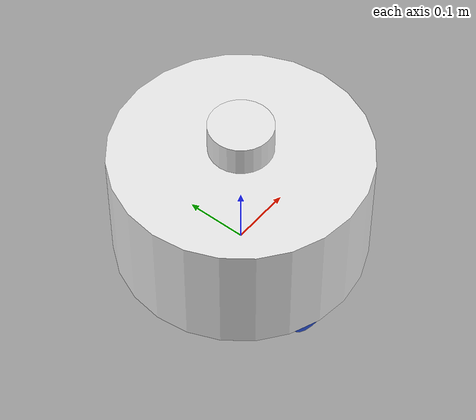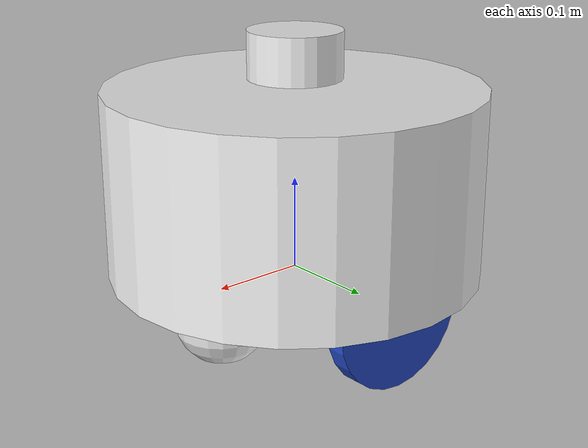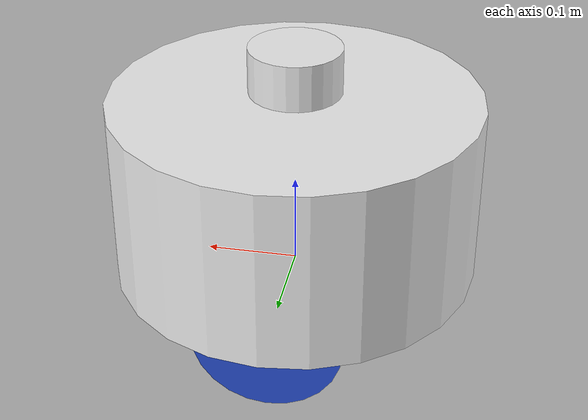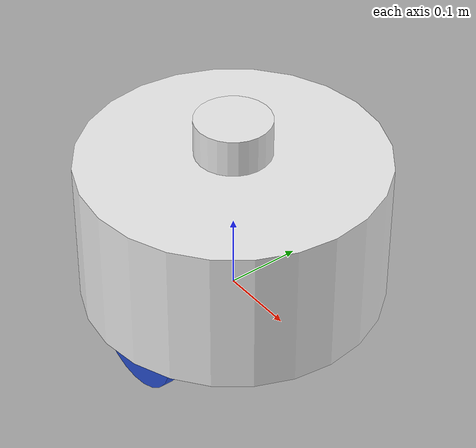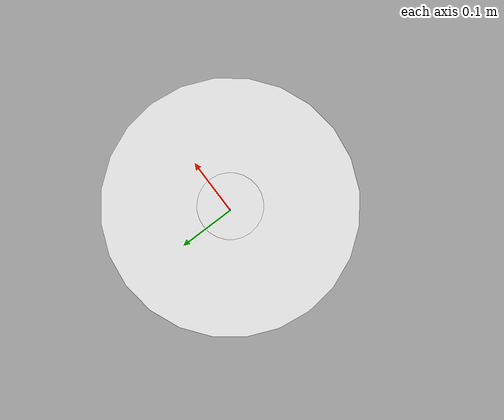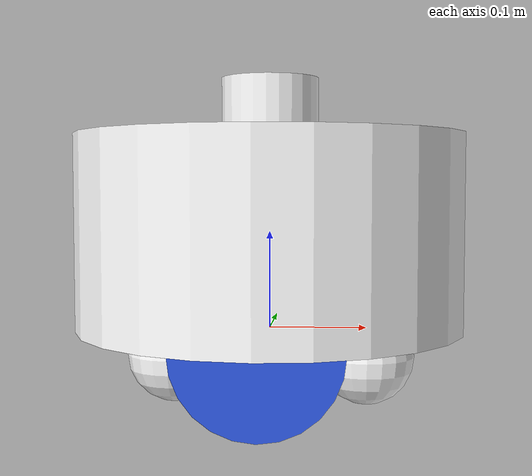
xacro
<?xml version="1.0" ?>
<robot name="iserve_openshelf7" xmlns:xacro="https://www.ros.org/wiki/xacro" >

  <!-- include the xacro files-->
  <xacro:include filename="$(find ubtna_mobile_description)/urdf/materials.xacro" />
  <xacro:include filename="$(find ubtna_mobile_description)/urdf/iserve_openshelf7.gazebo" />
  <xacro:include filename="$(find ubtna_mobile_description)/urdf/macros_wheel_openshelf7.xacro" />
  <!-- Robot constants and properties -->
  <xacro:include filename="$(find ubtna_mobile_description)/urdf/iserve_openshelf7_properties.xacro" />
  <!-- Chasis defined here -->
  <link name="base_link">
    <pose>0 0 0 0 0 0</pose>
    <inertial>
      <mass value="1"/>
      <origin rpy="0 0 0" xyz="0 0 0"/>
      <inertia ixx="0.0395416666667" ixy="0" ixz="0" iyy="0.106208333333" iyz="0" izz="0.00106208333333"/>
    </inertial>

    <collision name="collision_chassis">
      <origin xyz="0 0 0.1" rpy="0 0 0"/>
      <geometry>
        <cylinder radius="0.15" length="${chassisHeight}"/>
      </geometry>
    </collision>

    <visual>
      <origin xyz="0 0 0.1" rpy="0 0 0"/>
      <geometry>
        <cylinder radius="${chassisRadius}" length="${chassisHeight}"/>
      </geometry>
    </visual>
<!-- caster front -->
    <collision name="caster_front_collision">
      <origin rpy=" 0 0 0" xyz="${casterOffsetX} 0 ${casterOffsetZ}"/>
      <geometry>
        <sphere radius="${casterRadius}"/>
      </geometry>
      <surface>
        <friction>
          <ode>
            <mu>0</mu>
            <mu2>0</mu2>
          </ode>
        </friction>
      </surface>
    </collision>
    <visual name="caster_front_visual">
      <origin rpy=" 0 0 0" xyz="${casterOffsetX} 0 ${casterOffsetZ}"/>
      <geometry>
        <sphere radius="${casterRadius}"/>
      </geometry>
    </visual>
  <!-- caster back -->
    <collision name="caster_back_collision">
      <origin rpy=" 0 0 0" xyz="-${casterOffsetX} 0 ${casterOffsetZ}"/>
      <geometry>
        <sphere radius="${casterRadius}"/>
      </geometry>
      <surface>
        <friction>
          <ode>
            <mu>0</mu>
            <mu2>0</mu2>
          </ode>
        </friction>
      </surface>
    </collision>
    <visual name="caster_back_visual">
      <origin rpy=" 0 0 0" xyz="-${casterOffsetX} 0 ${casterOffsetZ}"/>
      <geometry>
        <sphere radius="${casterRadius}"/>
      </geometry>
    </visual>
  </link>

  <!-- Right Wheel link -->

   <xacro:link_wheel name="link_right_wheel" />
   <xacro:joint_wheel name="joint_right_wheel"  child="link_right_wheel"  origin_xyz="0 ${wheelOffsetY} 0"  />

  <!-- Left Wheel link -->

  <xacro:link_wheel name="link_left_wheel" />
  <xacro:joint_wheel name="joint_left_wheel"   child="link_left_wheel"   origin_xyz="0 -${wheelOffsetY} 0"  />

  <joint name="joint_sensor_laser" type="fixed">
    <origin xyz="${hokuyoOffsetX} ${hokuyoOffsetY} ${hokuyoOffsetZ}" rpy="3.1415926 0 0"/>
    <parent link="base_link"/>
    <child link="hokuyo_link"/>
  </joint>
 <link name="hokuyo_link">
    <inertial>
      <origin xyz="0 0 0" rpy="0 0 0" />
      <mass value="0.1" />
      <!-- RANDOM INERTIA BELOW -->
      <inertia ixx="0.0395416666667" ixy="0" ixz="0" iyy="0.106208333333" iyz="0" izz="0.001"/>
    </inertial>

    <visual>
      <origin xyz="0 0 0" rpy="0 0 0" />
      <geometry>
        <cylinder radius="0.05" length="0.05"/>
      </geometry>
      <material name="white" />
    </visual>

    <collision>
      <origin xyz="0 0 0" rpy="0 0 0"/>
      <geometry>
        <cylinder radius="0.05" length="0.05"/>
      </geometry>
    </collision>
  </link>
  <joint name="joint_basefootprint" type="fixed">
    <origin xyz="0 0 0" rpy="0 0 0"/>
    <parent link="base_footprint"/>
    <child link="base_link"/>
  </joint>
  <link name="base_footprint">
    <inertial>
      <origin xyz="0 0 0" rpy="0 0 0" />
      <mass value="0.01" />
      <inertia ixx="0.0001" ixy="0" ixz="0" iyy="0.001" iyz="0" izz="0.001"/>
    </inertial>

    <visual>
      <origin xyz="0 0 0" rpy="0 0 0" />
      <geometry>
        <cylinder radius="0.01" length="0.01"/>
      </geometry>
      <material name="white" />
    </visual>

    <collision>
      <origin xyz="0 0 0" rpy="0 0 0"/>
      <geometry>
        <cylinder radius="0.01" length="0.01"/>
      </geometry>
    </collision>
  </link>
</robot>

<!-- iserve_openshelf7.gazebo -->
<robot name="iserve_openshelf7" xmlns:xacro="https://www.ros.org/wiki/xacro" >
  <!-- Robot constants and properties -->
  <xacro:include filename="$(find ubtna_mobile_description)/urdf/iserve_openshelf7_properties.xacro" />
  <gazebo reference="base_link">
    <material>Gazebo/WhiteGlow</material>
  </gazebo>
  <gazebo reference="link_left_wheel">
    <material>Gazebo/Blue</material>
  </gazebo>
  <gazebo reference="link_right_wheel">
    <material>Gazebo/Blue</material>
  </gazebo>

  <gazebo>
    <plugin filename="libgazebo_ros_diff_drive.so" name="differential_drive_controller">
      <alwaysOn>true</alwaysOn>
      <updateRate>20</updateRate>
      <leftJoint>joint_right_wheel</leftJoint>
      <rightJoint>joint_left_wheel</rightJoint>
      <wheelSeparation>0.4</wheelSeparation>
      <wheelDiameter>0.16</wheelDiameter>
      <torque>20</torque>
      <commandTopic>cmd_vel</commandTopic>
      <odometryTopic>odom</odometryTopic>
      <odometryFrame>odom</odometryFrame>
      <robotBaseFrame>base_footprint</robotBaseFrame>
      <odometrySource>map</odometrySource>

    </plugin>
  </gazebo>
  <!-- ground_truth -->
  <gazebo>
    <plugin name="ground_truth"
            filename="libgazebo_ros_p3d.so">
      <updateRate>50.0</updateRate>
      <frameName>map</frameName>
      <bodyName>base_link</bodyName>
      <topicName>ground_truth</topicName>
      <updateRate>1.0</updateRate>
      <gaussianNoise>0.0</gaussianNoise>
    </plugin>
  </gazebo>
  <!-- hokuyo -->
  <gazebo reference="hokuyo_link">
    <!-- Don't use type="gpu_ray" -->
    <sensor type="ray"
            name="head_hokuyo_sensor">
      <pose>0 0 0 0 0 0</pose>
      <visualize>false</visualize>
      <update_rate>30</update_rate>
      <ray>
        <scan>
          <horizontal>
            <samples>720</samples>
            <resolution>1</resolution>
            <min_angle>-2.2561945</min_angle>
            <max_angle>2.2561945</max_angle>
          </horizontal>
        </scan>
        <range>
          <min>0.10</min>
          <max>20.0</max>
          <resolution>0.01</resolution>
        </range>
        <noise>
          <type>gaussian</type>
          <mean>0.0</mean>
          <stddev>0.01</stddev>
        </noise>
      </ray>

      <plugin name="gazebo_ros_head_hokuyo_controller"
              filename="libgazebo_ros_laser.so">
        <topicName>scan</topicName>
        <frameName>hokuyo_link</frameName>
      </plugin>
    </sensor>
  </gazebo>
</robot>

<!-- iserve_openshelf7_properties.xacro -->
<robot xmlns:xacro="http://www.ros.org/wiki/xacro">

	<!-- Constants -->
	<xacro:property name="PI" value="3.1415926535897931"/>

	<!-- Chassis properties -->
	<xacro:property name="chassisHeight" value="0.2"/>
	<xacro:property name="chassisRadius" value="0.2"/>

	<!-- Caster wheel properties -->
	<xacro:property name="casterRadius" value="0.05"/>
	<xacro:property name="casterOffsetX" value="0.1"/>
	<xacro:property name="casterOffsetZ" value="-0.029"/>

	<!-- Differential-drive wheels properties -->
	<xacro:property name="wheelWidth" value="0.02"/>
	<xacro:property name="wheelRadius" value="0.08"/>
	<xacro:property name="wheelOffsetY" value="0.15"/>

	<!-- Hokuyo laser properties -->
	<xacro:property name="hokuyoOffsetX" value="0.0"/>
	<xacro:property name="hokuyoOffsetY" value="0"/>
	<xacro:property name="hokuyoOffsetZ" value="0.233"/>

</robot>

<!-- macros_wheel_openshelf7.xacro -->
<robot xmlns:xacro="http://www.ros.org/wiki/xacro">
  <!-- Robot constants and properties -->
  <xacro:include filename="$(find ubtna_mobile_description)/urdf/iserve_openshelf7_properties.xacro" />
  <xacro:macro name="link_wheel" params="name">
      <link name="${name}">
            <inertial>
              <mass value="5"/>
              <origin rpy="0 1.5707 1.5707" xyz="0 0 0"/>
              <inertia ixx="0.000526666666667" ixy="0" ixz="0" iyy="0.000526666666667" iyz="0" izz="0.001"/>
            </inertial>
            <collision name="link_right_wheel_collision">
              <origin rpy="0 1.5707 1.5707" xyz="0 0 0"/>
              <geometry>
                <cylinder length="${wheelWidth}" radius="${wheelRadius}"/>
              </geometry>
            </collision>
      <surface>
        <friction>
          <ode>
            <mu>10</mu>
            <mu2>10</mu2>
          </ode>
        </friction>
      </surface>
            <visual name="${name}_visual">
              <origin rpy="0 1.5707 1.5707" xyz="0 0 0"/>
              <geometry>
                <cylinder length="${wheelWidth}" radius="${wheelRadius}"/>
              </geometry>
            </visual>
        </link>
    </xacro:macro>

    <xacro:macro name="joint_wheel" params="name child origin_xyz">
      <joint name="${name}" type="continuous">
        <origin rpy="0 0 0" xyz="${origin_xyz}"/>
        <child link="${child}"/>
        <parent link="base_footprint"/>
        <axis rpy="0 0 0" xyz="0 1 0"/>
        <limit effort="10000" velocity="2"/>
        <joint_properties damping="0.1" friction="0.1"/>
      </joint>
    </xacro:macro>

    <xacro:macro name="cylinder_inertia" params="mass r l">
    <inertia ixx="${mass*(3*r*r+l*l)/12}" ixy = "0" ixz = "0"
                iyy="${mass*(3*r*r+l*l)/12}" iyz = "0" izz="${mass*(r*r)/2}" />
  </xacro:macro>

</robot>
